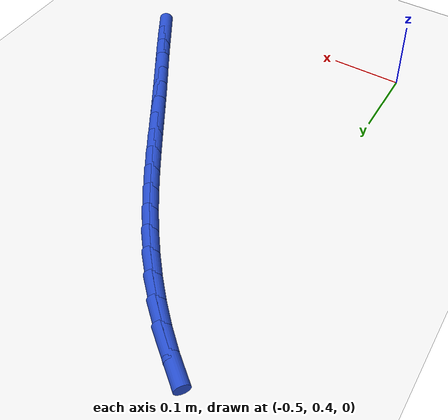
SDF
<sdf version="1.6">
 <world name="default">
  <model name="ground_plane">
   <static>1</static>
   <link name="link">
    <collision name="collision">
     <geometry><plane><normal>0 0 1</normal><size>100 100</size></plane></geometry>
     <surface><friction><ode><mu>100</mu><mu2>50</mu2></ode></friction></surface>
    </collision>
    <visual name="visual">
     <cast_shadows>0</cast_shadows>
     <geometry><plane><normal>0 0 1</normal><size>100 100</size></plane></geometry>
     <material>
      <script><uri>file://media/materials/scripts/gazebo.material</uri><name>Gazebo/WhiteGlow</name></script>
     </material>
    </visual>
   </link>
  </model>
  <model name="line">
   <link name="link_16">
    <pose>-0.14110696311841273 0.48761202241706997 0.01 0 1.57 -1.0140876542201926</pose>
    <collision name="collision">
     <geometry><cylinder><radius>0.01</radius><length>0.08</length></cylinder></geometry>
    </collision>
    <visual name="visual">
     <material>
      <script><name>Gazebo/Blue</name><uri>file://media/materials/scripts/gazebo.material</uri></script>
     </material>
     <geometry><cylinder><radius>0.01</radius><length>0.08</length></cylinder></geometry>
    </visual>
   </link>
   <link name="link_17">
    <pose>-0.15823730070851247 0.51513621150242 0.01 0 1.57 -1.0047702653075612</pose>
    <collision name="collision">
     <geometry><cylinder><radius>0.01</radius><length>0.08</length></cylinder></geometry>
    </collision>
    <visual name="visual">
     <material>
      <script><name>Gazebo/Blue</name><uri>file://media/materials/scripts/gazebo.material</uri></script>
     </material>
     <geometry><cylinder><radius>0.01</radius><length>0.08</length></cylinder></geometry>
    </visual>
   </link>
   <link name="link_18">
    <pose>-0.17564600990306484 0.5425352704184305 0.01 0 1.57 -1.0003149174076857</pose>
    <collision name="collision">
     <geometry><cylinder><radius>0.01</radius><length>0.08</length></cylinder></geometry>
    </collision>
    <visual name="visual">
     <material>
      <script><name>Gazebo/Blue</name><uri>file://media/materials/scripts/gazebo.material</uri></script>
     </material>
     <geometry><cylinder><radius>0.01</radius><length>0.08</length></cylinder></geometry>
    </visual>
   </link>
   <link name="link_19">
    <pose>-0.1931825065423031 0.5698656726234913 0.01 0 1.57 -1.000703427991057</pose>
    <collision name="collision">
     <geometry><cylinder><radius>0.01</radius><length>0.08</length></cylinder></geometry>
    </collision>
    <visual name="visual">
     <material>
      <script><name>Gazebo/Blue</name><uri>file://media/materials/scripts/gazebo.material</uri></script>
     </material>
     <geometry><cylinder><radius>0.01</radius><length>0.08</length></cylinder></geometry>
    </visual>
   </link>
   <link name="link_20">
    <pose>-0.21069620646646062 0.5971838915759925 0.01 0 1.57 -1.0058750031840649</pose>
    <collision name="collision">
     <geometry><cylinder><radius>0.01</radius><length>0.08</length></cylinder></geometry>
    </collision>
    <visual name="visual">
     <material>
      <script><name>Gazebo/Blue</name><uri>file://media/materials/scripts/gazebo.material</uri></script>
     </material>
     <geometry><cylinder><radius>0.01</radius><length>0.08</length></cylinder></geometry>
    </visual>
   </link>
   <link name="link_21">
    <pose>-0.22803864262422394 0.6245453779863667 0.01 0 1.57 -1.0118614931017058</pose>
    <collision name="collision">
     <geometry><cylinder><radius>0.01</radius><length>0.08</length></cylinder></geometry>
    </collision>
    <visual name="visual">
     <material>
      <script><name>Gazebo/Blue</name><uri>file://media/materials/scripts/gazebo.material</uri></script>
     </material>
     <geometry><cylinder><radius>0.01</radius><length>0.08</length></cylinder></geometry>
    </visual>
   </link>
   <link name="link_22">
    <pose>-0.24517864398886402 0.6519489183590288 0.01 0 1.57 -1.0126347728544314</pose>
    <collision name="collision">
     <geometry><cylinder><radius>0.01</radius><length>0.08</length></cylinder></geometry>
    </collision>
    <visual name="visual">
     <material>
      <script><name>Gazebo/Blue</name><uri>file://media/materials/scripts/gazebo.material</uri></script>
     </material>
     <geometry><cylinder><radius>0.01</radius><length>0.08</length></cylinder></geometry>
    </visual>
   </link>
   <link name="link_23">
    <pose>-0.2622614636988771 0.6793080709455147 0.01 0 1.57 -1.0076622553800159</pose>
    <collision name="collision">
     <geometry><cylinder><radius>0.01</radius><length>0.08</length></cylinder></geometry>
    </collision>
    <visual name="visual">
     <material>
      <script><name>Gazebo/Blue</name><uri>file://media/materials/scripts/gazebo.material</uri></script>
     </material>
     <geometry><cylinder><radius>0.01</radius><length>0.08</length></cylinder></geometry>
    </visual>
   </link>
   <link name="link_24">
    <pose>-0.2794469188122245 0.706529358354543 0.01 0 1.57 -0.9969140273976459</pose>
    <collision name="collision">
     <geometry><cylinder><radius>0.01</radius><length>0.08</length></cylinder></geometry>
    </collision>
    <visual name="visual">
     <material>
      <script><name>Gazebo/Blue</name><uri>file://media/materials/scripts/gazebo.material</uri></script>
     </material>
     <geometry><cylinder><radius>0.01</radius><length>0.08</length></cylinder></geometry>
    </visual>
   </link>
   <link name="link_25">
    <pose>-0.29689482638686754 0.7335193031948317 0.01 0 1.57 -0.9803719907704949</pose>
    <collision name="collision">
     <geometry><cylinder><radius>0.01</radius><length>0.08</length></cylinder></geometry>
    </collision>
    <visual name="visual">
     <material>
      <script><name>Gazebo/Blue</name><uri>file://media/materials/scripts/gazebo.material</uri></script>
     </material>
     <geometry><cylinder><radius>0.01</radius><length>0.08</length></cylinder></geometry>
    </visual>
   </link>
   <link name="link_26">
    <pose>-0.31476500348076714 0.7601844280750986 0.01 0 1.57 -0.9580408075878378</pose>
    <collision name="collision">
     <geometry><cylinder><radius>0.01</radius><length>0.08</length></cylinder></geometry>
    </collision>
    <visual name="visual">
     <material>
      <script><name>Gazebo/Blue</name><uri>file://media/materials/scripts/gazebo.material</uri></script>
     </material>
     <geometry><cylinder><radius>0.01</radius><length>0.08</length></cylinder></geometry>
    </visual>
   </link>
   <link name="link_27">
    <pose>-0.3332172671518848 0.7864312556040624 0.01 0 1.57 -0.9299645481422498</pose>
    <collision name="collision">
     <geometry><cylinder><radius>0.01</radius><length>0.08</length></cylinder></geometry>
    </collision>
    <visual name="visual">
     <material>
      <script><name>Gazebo/Blue</name><uri>file://media/materials/scripts/gazebo.material</uri></script>
     </material>
     <geometry><cylinder><radius>0.01</radius><length>0.08</length></cylinder></geometry>
    </visual>
   </link>
   <link name="link_28">
    <pose>-0.3524114344581818 0.812166308390441 0.01 0 1.57 -0.8962483764619484</pose>
    <collision name="collision">
     <geometry><cylinder><radius>0.01</radius><length>0.08</length></cylinder></geometry>
    </collision>
    <visual name="visual">
     <material>
      <script><name>Gazebo/Blue</name><uri>file://media/materials/scripts/gazebo.material</uri></script>
     </material>
     <geometry><cylinder><radius>0.01</radius><length>0.08</length></cylinder></geometry>
    </visual>
   </link>
   <link name="link_29">
    <pose>-0.3725073224576191 0.8372961090429525 0.01 0 1.57 -0.8570837008588502</pose>
    <collision name="collision">
     <geometry><cylinder><radius>0.01</radius><length>0.08</length></cylinder></geometry>
    </collision>
    <visual name="visual">
     <material>
      <script><name>Gazebo/Blue</name><uri>file://media/materials/scripts/gazebo.material</uri></script>
     </material>
     <geometry><cylinder><radius>0.01</radius><length>0.08</length></cylinder></geometry>
    </visual>
   </link>
   <link name="link_30">
    <pose>-0.393664748208158 0.8617271801703149 0.01 0 1.57 -0.8127739419498019</pose>
    <collision name="collision">
     <geometry><cylinder><radius>0.01</radius><length>0.08</length></cylinder></geometry>
    </collision>
    <visual name="visual">
     <material>
      <script><name>Gazebo/Blue</name><uri>file://media/materials/scripts/gazebo.material</uri></script>
     </material>
     <geometry><cylinder><radius>0.01</radius><length>0.08</length></cylinder></geometry>
    </visual>
   </link>
   <link name="link_31">
    <pose>-0.4160435287677597 0.8853660443812466 0.01 0 1.57 -0.7638232330316025</pose>
    <collision name="collision">
     <geometry><cylinder><radius>0.01</radius><length>0.08</length></cylinder></geometry>
    </collision>
    <visual name="visual">
     <material>
      <script><name>Gazebo/Blue</name><uri>file://media/materials/scripts/gazebo.material</uri></script>
     </material>
     <geometry><cylinder><radius>0.01</radius><length>0.08</length></cylinder></geometry>
    </visual>
   </link>
   <link name="link_32">
    <pose>-0.43979872626941885 0.908117703966737 0.01 0 1.57 -0.7124274869079873</pose>
    <collision name="collision">
     <geometry><cylinder><radius>0.01</radius><length>0.08</length></cylinder></geometry>
    </collision>
    <visual name="visual">
     <material>
      <script><name>Gazebo/Blue</name><uri>file://media/materials/scripts/gazebo.material</uri></script>
     </material>
     <geometry><cylinder><radius>0.01</radius><length>0.08</length></cylinder></geometry>
    </visual>
   </link>
   <link name="link_33">
    <pose>-0.4649528317305743 0.9298447735421119 0.01 0 1.57 -0.6601596125488771</pose>
    <collision name="collision">
     <geometry><cylinder><radius>0.01</radius><length>0.08</length></cylinder></geometry>
    </collision>
    <visual name="visual">
     <material>
      <script><name>Gazebo/Blue</name><uri>file://media/materials/scripts/gazebo.material</uri></script>
     </material>
     <geometry><cylinder><radius>0.01</radius><length>0.08</length></cylinder></geometry>
    </visual>
   </link>
  </model>
 </world>
</sdf>
